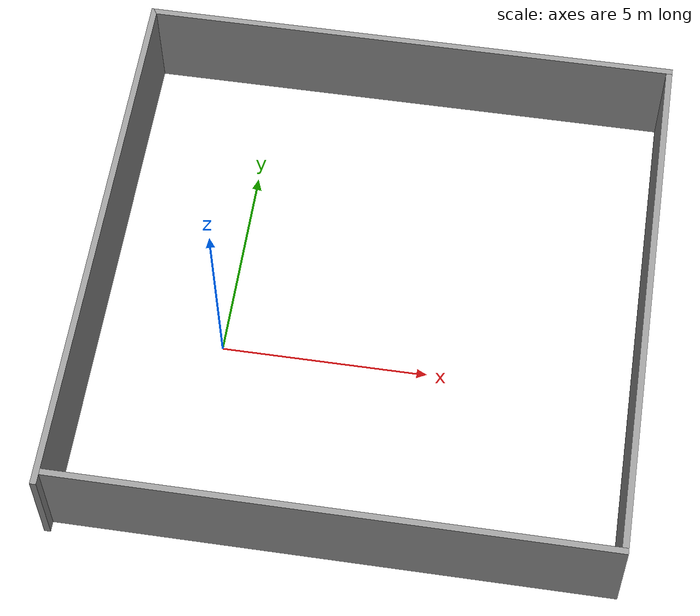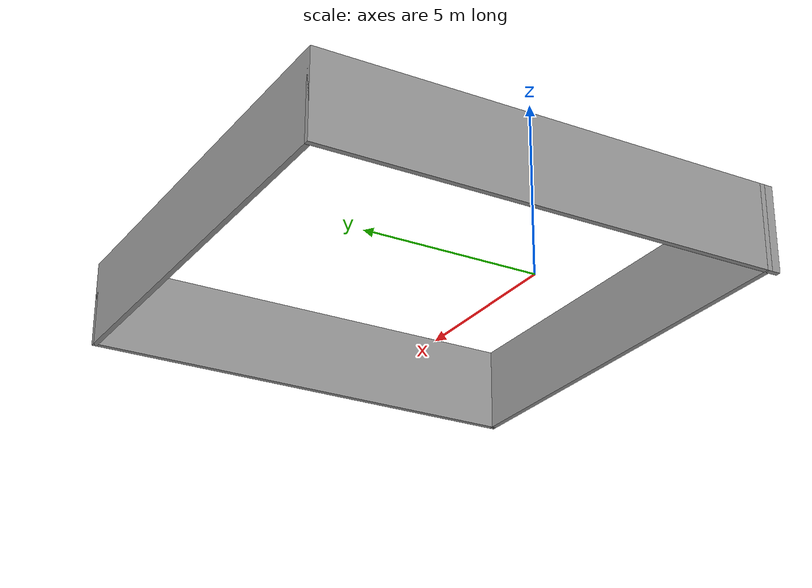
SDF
<?xml version='1.0'?>
<sdf version='1.7'>
  <model name='Untitled'>
    <pose>3.42068 1.39168 0 0 -0 0</pose>
    <link name='Wall_2'>
      <collision name='Wall_2_Collision'>
        <geometry>
          <box>
            <size>13.5 0.15 2.5</size>
          </box>
        </geometry>
        <pose>0 0 1.25 0 -0 0</pose>
      </collision>
      <visual name='Wall_2_Visual'>
        <pose>0 0 1.25 0 -0 0</pose>
        <geometry>
          <box>
            <size>13.5 0.15 2.5</size>
          </box>
        </geometry>
        <material>
          <script>
            <uri>file://media/materials/scripts/gazebo.material</uri>
            <name>Gazebo/Grey</name>
          </script>
          <ambient>1 1 1 1</ambient>
        </material>
        <meta>
          <layer>0</layer>
        </meta>
      </visual>
      <pose>-6.55 -0 0 0 -0 1.5708</pose>
    </link>
    <link name='Wall_3'>
      <collision name='Wall_3_Collision'>
        <geometry>
          <box>
            <size>13.25 0.15 2.5</size>
          </box>
        </geometry>
        <pose>0 0 1.25 0 -0 0</pose>
      </collision>
      <visual name='Wall_3_Visual'>
        <pose>0 0 1.25 0 -0 0</pose>
        <geometry>
          <box>
            <size>13.25 0.15 2.5</size>
          </box>
        </geometry>
        <material>
          <script>
            <uri>file://media/materials/scripts/gazebo.material</uri>
            <name>Gazebo/Grey</name>
          </script>
          <ambient>1 1 1 1</ambient>
        </material>
        <meta>
          <layer>0</layer>
        </meta>
      </visual>
      <pose>0 6.675 0 0 -0 0</pose>
    </link>
    <link name='Wall_4'>
      <collision name='Wall_4_Collision'>
        <geometry>
          <box>
            <size>13.25 0.15 2.5</size>
          </box>
        </geometry>
        <pose>0 0 1.25 0 -0 0</pose>
      </collision>
      <visual name='Wall_4_Visual'>
        <pose>0 0 1.25 0 -0 0</pose>
        <geometry>
          <box>
            <size>13.25 0.15 2.5</size>
          </box>
        </geometry>
        <material>
          <script>
            <uri>file://media/materials/scripts/gazebo.material</uri>
            <name>Gazebo/Grey</name>
          </script>
          <ambient>1 1 1 1</ambient>
        </material>
        <meta>
          <layer>0</layer>
        </meta>
      </visual>
      <pose>6.55 0.125 0 0 -0 -1.5708</pose>
    </link>
    <link name='Wall_5'>
      <collision name='Wall_5_Collision'>
        <geometry>
          <box>
            <size>13.25 0.15 2.5</size>
          </box>
        </geometry>
        <pose>0 0 1.25 0 -0 0</pose>
      </collision>
      <visual name='Wall_5_Visual'>
        <pose>0 0 1.25 0 -0 0</pose>
        <geometry>
          <box>
            <size>13.25 0.15 2.5</size>
          </box>
        </geometry>
        <material>
          <script>
            <uri>file://media/materials/scripts/gazebo.material</uri>
            <name>Gazebo/Grey</name>
          </script>
          <ambient>1 1 1 1</ambient>
        </material>
        <meta>
          <layer>0</layer>
        </meta>
      </visual>
      <pose>0 -6.425 0 0 -0 3.14159</pose>
    </link>
    <static>1</static>
  </model>
</sdf>
